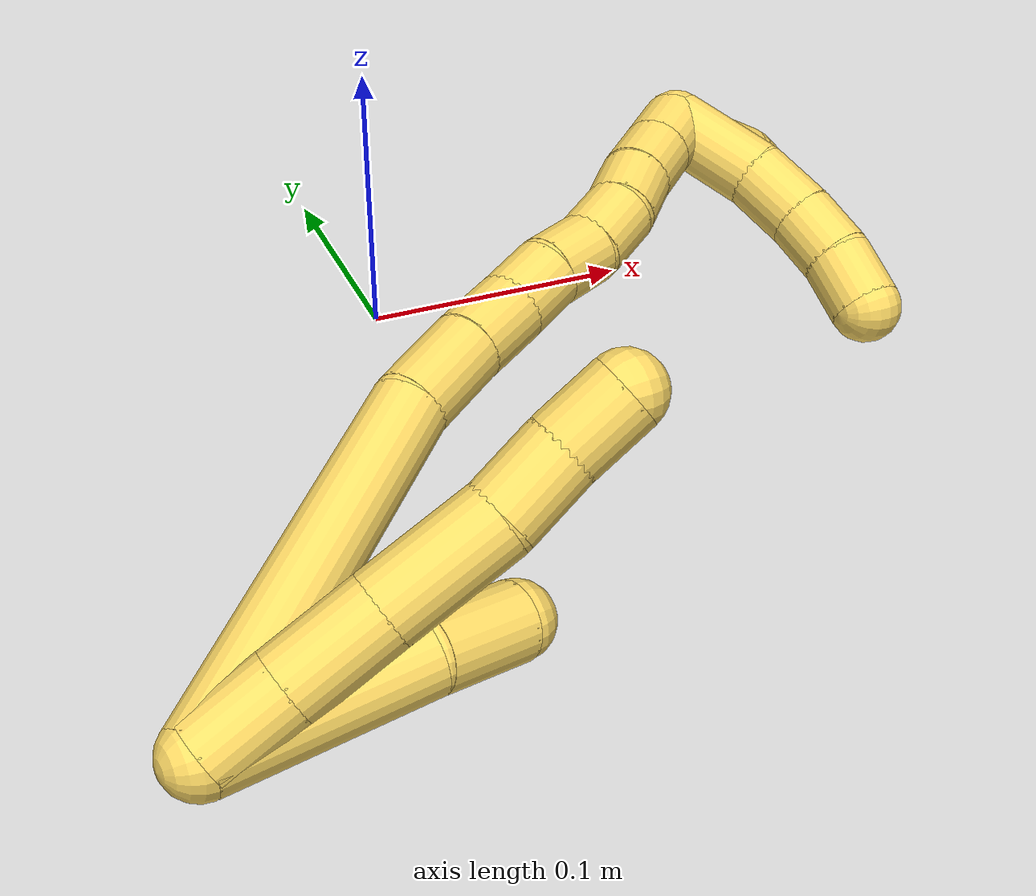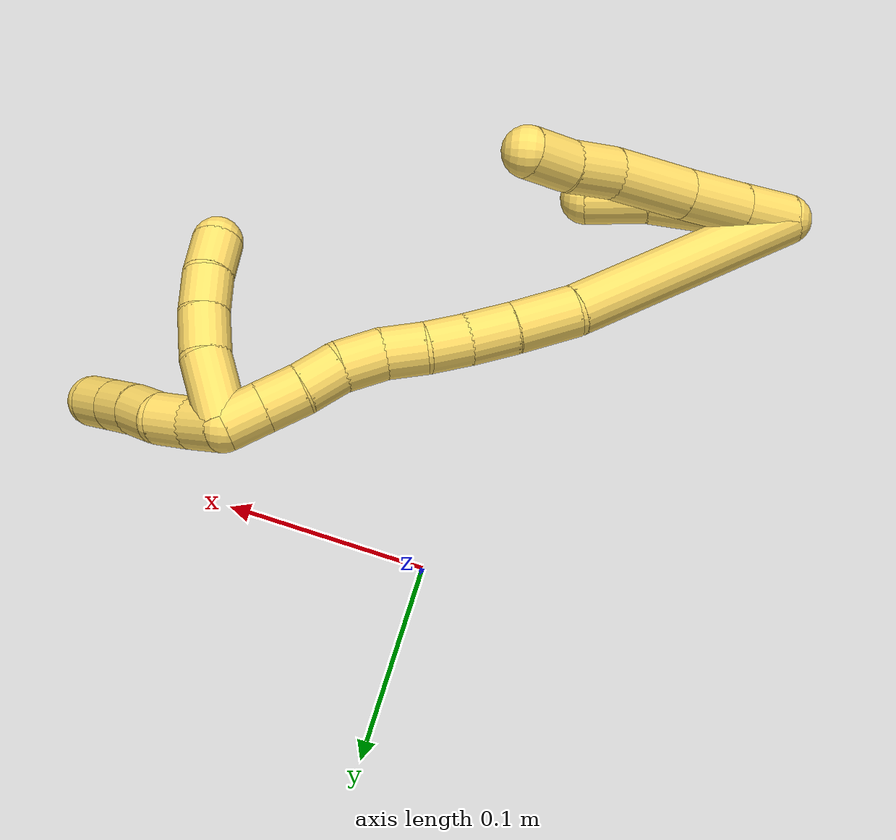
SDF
<sdf version="1.7">
 <world name="default">
  <model name="5">
   <static>0</static>
   <link name="5">
    <collision name="collision-cylinder-e_1_2_8">
     <pose>0.005964 -0.003396 -0.0121 2.86798 0.443072 2.04432</pose>
     <geometry><cylinder><radius>0.0125</radius><length>0.027822</length></cylinder></geometry>
     <surface>
      <friction><ode><mu>1.16</mu><mu2>1.16</mu2><slip1>0</slip1><slip2>0</slip2></ode></friction>
      <contact><ode><kp>1e+06</kp><kd>1</kd><max_vel>0</max_vel><min_depth>0.001</min_depth></ode></contact>
     </surface>
    </collision>
    <visual name="visual-cylinder-e_1_2_8">
     <pose>0.005964 -0.003396 -0.0121 2.86798 0.443072 2.04432</pose>
     <geometry><cylinder><radius>0.0125</radius><length>0.027822</length></cylinder></geometry>
     <material><ambient>1 0.858824 0.4 1</ambient></material>
    </visual>
    <collision name="collision-cylinder-e_2_8_9">
     <pose>0.018851 -0.010995 -0.038326 2.85237 0.43917 1.98532</pose>
     <geometry><cylinder><radius>0.0125</radius><length>0.032566</length></cylinder></geometry>
     <surface>
      <friction><ode><mu>1.16</mu><mu2>1.16</mu2><slip1>0</slip1><slip2>0</slip2></ode></friction>
      <contact><ode><kp>1e+06</kp><kd>1</kd><max_vel>0</max_vel><min_depth>0.001</min_depth></ode></contact>
     </surface>
    </collision>
    <visual name="visual-cylinder-e_2_8_9">
     <pose>0.018851 -0.010995 -0.038326 2.85237 0.43917 1.98532</pose>
     <geometry><cylinder><radius>0.0125</radius><length>0.032566</length></cylinder></geometry>
     <material><ambient>1 0.858824 0.4 1</ambient></material>
    </visual>
    <collision name="collision-cylinder-e_3_9_10">
     <pose>0.034395 -0.020926 -0.069828 2.82319 0.440298 1.89683</pose>
     <geometry><cylinder><radius>0.0125</radius><length>0.04045</length></cylinder></geometry>
     <surface>
      <friction><ode><mu>1.16</mu><mu2>1.16</mu2><slip1>0</slip1><slip2>0</slip2></ode></friction>
      <contact><ode><kp>1e+06</kp><kd>1</kd><max_vel>0</max_vel><min_depth>0.001</min_depth></ode></contact>
     </surface>
    </collision>
    <visual name="visual-cylinder-e_3_9_10">
     <pose>0.034395 -0.020926 -0.069828 2.82319 0.440298 1.89683</pose>
     <geometry><cylinder><radius>0.0125</radius><length>0.04045</length></cylinder></geometry>
     <material><ambient>1 0.858824 0.4 1</ambient></material>
    </visual>
    <collision name="collision-cylinder-e_4_10_11">
     <pose>0.049981 -0.029169 -0.097455 2.90095 0.583386 2.37597</pose>
     <geometry><cylinder><radius>0.0125</radius><length>0.025292</length></cylinder></geometry>
     <surface>
      <friction><ode><mu>1.16</mu><mu2>1.16</mu2><slip1>0</slip1><slip2>0</slip2></ode></friction>
      <contact><ode><kp>1e+06</kp><kd>1</kd><max_vel>0</max_vel><min_depth>0.001</min_depth></ode></contact>
     </surface>
    </collision>
    <visual name="visual-cylinder-e_4_10_11">
     <pose>0.049981 -0.029169 -0.097455 2.90095 0.583386 2.37597</pose>
     <geometry><cylinder><radius>0.0125</radius><length>0.025292</length></cylinder></geometry>
     <material><ambient>1 0.858824 0.4 1</ambient></material>
    </visual>
    <collision name="collision-cylinder-e_5_11_6">
     <pose>0.063087 -0.035705 -0.117117 2.73794 0.540404 1.8691</pose>
     <geometry><cylinder><radius>0.0125</radius><length>0.02387</length></cylinder></geometry>
     <surface>
      <friction><ode><mu>1.16</mu><mu2>1.16</mu2><slip1>0</slip1><slip2>0</slip2></ode></friction>
      <contact><ode><kp>1e+06</kp><kd>1</kd><max_vel>0</max_vel><min_depth>0.001</min_depth></ode></contact>
     </surface>
    </collision>
    <visual name="visual-cylinder-e_5_11_6">
     <pose>0.063087 -0.035705 -0.117117 2.73794 0.540404 1.8691</pose>
     <geometry><cylinder><radius>0.0125</radius><length>0.02387</length></cylinder></geometry>
     <material><ambient>1 0.858824 0.4 1</ambient></material>
    </visual>
    <collision name="collision-cylinder-e_1_2_12">
     <pose>0.002939 -0.003114 -0.03423 3.05086 0.085295 1.50896</pose>
     <geometry><cylinder><radius>0.0125</radius><length>0.068994</length></cylinder></geometry>
     <surface>
      <friction><ode><mu>1.16</mu><mu2>1.16</mu2><slip1>0</slip1><slip2>0</slip2></ode></friction>
      <contact><ode><kp>1e+06</kp><kd>1</kd><max_vel>0</max_vel><min_depth>0.001</min_depth></ode></contact>
     </surface>
    </collision>
    <visual name="visual-cylinder-e_1_2_12">
     <pose>0.002939 -0.003114 -0.03423 3.05086 0.085295 1.50896</pose>
     <geometry><cylinder><radius>0.0125</radius><length>0.068994</length></cylinder></geometry>
     <material><ambient>1 0.858824 0.4 1</ambient></material>
    </visual>
    <collision name="collision-cylinder-e_2_12_5">
     <pose>0.005324 -0.004568 -0.083864 -3.03422 -0.0357 0.641452</pose>
     <geometry><cylinder><radius>0.0125</radius><length>0.031006</length></cylinder></geometry>
     <surface>
      <friction><ode><mu>1.16</mu><mu2>1.16</mu2><slip1>0</slip1><slip2>0</slip2></ode></friction>
      <contact><ode><kp>1e+06</kp><kd>1</kd><max_vel>0</max_vel><min_depth>0.001</min_depth></ode></contact>
     </surface>
    </collision>
    <visual name="visual-cylinder-e_2_12_5">
     <pose>0.005324 -0.004568 -0.083864 -3.03422 -0.0357 0.641452</pose>
     <geometry><cylinder><radius>0.0125</radius><length>0.031006</length></cylinder></geometry>
     <material><ambient>1 0.858824 0.4 1</ambient></material>
    </visual>
    <collision name="collision-cylinder-e_1_2_13">
     <pose>0.033339 0.017505 -0.049345 -2.80069 0.567011 -2.0744</pose>
     <geometry><cylinder><radius>0.0125</radius><length>0.124143</length></cylinder></geometry>
     <surface>
      <friction><ode><mu>1.16</mu><mu2>1.16</mu2><slip1>0</slip1><slip2>0</slip2></ode></friction>
      <contact><ode><kp>1e+06</kp><kd>1</kd><max_vel>0</max_vel><min_depth>0.001</min_depth></ode></contact>
     </surface>
    </collision>
    <visual name="visual-cylinder-e_1_2_13">
     <pose>0.033339 0.017505 -0.049345 -2.80069 0.567011 -2.0744</pose>
     <geometry><cylinder><radius>0.0125</radius><length>0.124143</length></cylinder></geometry>
     <material><ambient>1 0.858824 0.4 1</ambient></material>
    </visual>
    <collision name="collision-cylinder-e_2_13_14">
     <pose>0.07237 0.038706 -0.112405 -2.87836 0.381112 -1.93867</pose>
     <geometry><cylinder><radius>0.0125</radius><length>0.030604</length></cylinder></geometry>
     <surface>
      <friction><ode><mu>1.16</mu><mu2>1.16</mu2><slip1>0</slip1><slip2>0</slip2></ode></friction>
      <contact><ode><kp>1e+06</kp><kd>1</kd><max_vel>0</max_vel><min_depth>0.001</min_depth></ode></contact>
     </surface>
    </collision>
    <visual name="visual-cylinder-e_2_13_14">
     <pose>0.07237 0.038706 -0.112405 -2.87836 0.381112 -1.93867</pose>
     <geometry><cylinder><radius>0.0125</radius><length>0.030604</length></cylinder></geometry>
     <material><ambient>1 0.858824 0.4 1</ambient></material>
    </visual>
    <collision name="collision-cylinder-e_3_14_15">
     <pose>0.08176 0.045058 -0.136732 -2.89636 0.32597 -1.85535</pose>
     <geometry><cylinder><radius>0.0125</radius><length>0.023096</length></cylinder></geometry>
     <surface>
      <friction><ode><mu>1.16</mu><mu2>1.16</mu2><slip1>0</slip1><slip2>0</slip2></ode></friction>
      <contact><ode><kp>1e+06</kp><kd>1</kd><max_vel>0</max_vel><min_depth>0.001</min_depth></ode></contact>
     </surface>
    </collision>
    <visual name="visual-cylinder-e_3_14_15">
     <pose>0.08176 0.045058 -0.136732 -2.89636 0.32597 -1.85535</pose>
     <geometry><cylinder><radius>0.0125</radius><length>0.023096</length></cylinder></geometry>
     <material><ambient>1 0.858824 0.4 1</ambient></material>
    </visual>
    <collision name="collision-cylinder-e_4_15_16">
     <pose>0.089203 0.049381 -0.156506 -2.96162 0.382405 -2.26919</pose>
     <geometry><cylinder><radius>0.0125</radius><length>0.020072</length></cylinder></geometry>
     <surface>
      <friction><ode><mu>1.16</mu><mu2>1.16</mu2><slip1>0</slip1><slip2>0</slip2></ode></friction>
      <contact><ode><kp>1e+06</kp><kd>1</kd><max_vel>0</max_vel><min_depth>0.001</min_depth></ode></contact>
     </surface>
    </collision>
    <visual name="visual-cylinder-e_4_15_16">
     <pose>0.089203 0.049381 -0.156506 -2.96162 0.382405 -2.26919</pose>
     <geometry><cylinder><radius>0.0125</radius><length>0.020072</length></cylinder></geometry>
     <material><ambient>1 0.858824 0.4 1</ambient></material>
    </visual>
    <collision name="collision-cylinder-e_5_16_17">
     <pose>0.094967 0.052707 -0.175449 -2.9736 0.200763 -1.74904</pose>
     <geometry><cylinder><radius>0.0125</radius><length>0.020251</length></cylinder></geometry>
     <surface>
      <friction><ode><mu>1.16</mu><mu2>1.16</mu2><slip1>0</slip1><slip2>0</slip2></ode></friction>
      <contact><ode><kp>1e+06</kp><kd>1</kd><max_vel>0</max_vel><min_depth>0.001</min_depth></ode></contact>
     </surface>
    </collision>
    <visual name="visual-cylinder-e_5_16_17">
     <pose>0.094967 0.052707 -0.175449 -2.9736 0.200763 -1.74904</pose>
     <geometry><cylinder><radius>0.0125</radius><length>0.020251</length></cylinder></geometry>
     <material><ambient>1 0.858824 0.4 1</ambient></material>
    </visual>
    <collision name="collision-cylinder-e_6_17_18">
     <pose>0.101208 0.057142 -0.194801 -2.85924 0.400754 -1.92046</pose>
     <geometry><cylinder><radius>0.0125</radius><length>0.021644</length></cylinder></geometry>
     <surface>
      <friction><ode><mu>1.16</mu><mu2>1.16</mu2><slip1>0</slip1><slip2>0</slip2></ode></friction>
      <contact><ode><kp>1e+06</kp><kd>1</kd><max_vel>0</max_vel><min_depth>0.001</min_depth></ode></contact>
     </surface>
    </collision>
    <visual name="visual-cylinder-e_6_17_18">
     <pose>0.101208 0.057142 -0.194801 -2.85924 0.400754 -1.92046</pose>
     <geometry><cylinder><radius>0.0125</radius><length>0.021644</length></cylinder></geometry>
     <material><ambient>1 0.858824 0.4 1</ambient></material>
    </visual>
    <collision name="collision-cylinder-e_7_18_19">
     <pose>0.109869 0.064449 -0.21218 -2.61583 0.457039 -1.42543</pose>
     <geometry><cylinder><radius>0.0125</radius><length>0.020119</length></cylinder></geometry>
     <surface>
      <friction><ode><mu>1.16</mu><mu2>1.16</mu2><slip1>0</slip1><slip2>0</slip2></ode></friction>
      <contact><ode><kp>1e+06</kp><kd>1</kd><max_vel>0</max_vel><min_depth>0.001</min_depth></ode></contact>
     </surface>
    </collision>
    <visual name="visual-cylinder-e_7_18_19">
     <pose>0.109869 0.064449 -0.21218 -2.61583 0.457039 -1.42543</pose>
     <geometry><cylinder><radius>0.0125</radius><length>0.020119</length></cylinder></geometry>
     <material><ambient>1 0.858824 0.4 1</ambient></material>
    </visual>
    <collision name="collision-cylinder-e_8_19_20">
     <pose>0.11786 0.073043 -0.22843 -2.69301 0.362258 -1.35287</pose>
     <geometry><cylinder><radius>0.0125</radius><length>0.02004</length></cylinder></geometry>
     <surface>
      <friction><ode><mu>1.16</mu><mu2>1.16</mu2><slip1>0</slip1><slip2>0</slip2></ode></friction>
      <contact><ode><kp>1e+06</kp><kd>1</kd><max_vel>0</max_vel><min_depth>0.001</min_depth></ode></contact>
     </surface>
    </collision>
    <visual name="visual-cylinder-e_8_19_20">
     <pose>0.11786 0.073043 -0.22843 -2.69301 0.362258 -1.35287</pose>
     <geometry><cylinder><radius>0.0125</radius><length>0.02004</length></cylinder></geometry>
     <material><ambient>1 0.858824 0.4 1</ambient></material>
    </visual>
    <collision name="collision-cylinder-e_9_20_1">
     <pose>0.125015 0.081174 -0.245285 -2.69116 0.368156 -1.36483</pose>
     <geometry><cylinder><radius>0.0125</radius><length>0.02003</length></cylinder></geometry>
     <surface>
      <friction><ode><mu>1.16</mu><mu2>1.16</mu2><slip1>0</slip1><slip2>0</slip2></ode></friction>
      <contact><ode><kp>1e+06</kp><kd>1</kd><max_vel>0</max_vel><min_depth>0.001</min_depth></ode></contact>
     </surface>
    </collision>
    <visual name="visual-cylinder-e_9_20_1">
     <pose>0.125015 0.081174 -0.245285 -2.69116 0.368156 -1.36483</pose>
     <geometry><cylinder><radius>0.0125</radius><length>0.02003</length></cylinder></geometry>
     <material><ambient>1 0.858824 0.4 1</ambient></material>
    </visual>
    <collision name="collision-cylinder-e_1_1_21">
     <pose>0.117475 0.073084 -0.260355 2.07183 -0.67713 -1.07245</pose>
     <geometry><cylinder><radius>0.0125</radius><length>0.035572</length></cylinder></geometry>
     <surface>
      <friction><ode><mu>1.16</mu><mu2>1.16</mu2><slip1>0</slip1><slip2>0</slip2></ode></friction>
      <contact><ode><kp>1e+06</kp><kd>1</kd><max_vel>0</max_vel><min_depth>0.001</min_depth></ode></contact>
     </surface>
    </collision>
    <visual name="visual-cylinder-e_1_1_21">
     <pose>0.117475 0.073084 -0.260355 2.07183 -0.67713 -1.07245</pose>
     <geometry><cylinder><radius>0.0125</radius><length>0.035572</length></cylinder></geometry>
     <material><ambient>1 0.858824 0.4 1</ambient></material>
    </visual>
    <collision name="collision-cylinder-e_2_21_22">
     <pose>0.098047 0.053009 -0.269291 1.85093 -0.788179 -1.00929</pose>
     <geometry><cylinder><radius>0.0125</radius><length>0.023367</length></cylinder></geometry>
     <surface>
      <friction><ode><mu>1.16</mu><mu2>1.16</mu2><slip1>0</slip1><slip2>0</slip2></ode></friction>
      <contact><ode><kp>1e+06</kp><kd>1</kd><max_vel>0</max_vel><min_depth>0.001</min_depth></ode></contact>
     </surface>
    </collision>
    <visual name="visual-cylinder-e_2_21_22">
     <pose>0.098047 0.053009 -0.269291 1.85093 -0.788179 -1.00929</pose>
     <geometry><cylinder><radius>0.0125</radius><length>0.023367</length></cylinder></geometry>
     <material><ambient>1 0.858824 0.4 1</ambient></material>
    </visual>
    <collision name="collision-cylinder-e_3_22_23">
     <pose>0.08227 0.038233 -0.272227 1.66638 -0.827247 -0.899984</pose>
     <geometry><cylinder><radius>0.0125</radius><length>0.020358</length></cylinder></geometry>
     <surface>
      <friction><ode><mu>1.16</mu><mu2>1.16</mu2><slip1>0</slip1><slip2>0</slip2></ode></friction>
      <contact><ode><kp>1e+06</kp><kd>1</kd><max_vel>0</max_vel><min_depth>0.001</min_depth></ode></contact>
     </surface>
    </collision>
    <visual name="visual-cylinder-e_3_22_23">
     <pose>0.08227 0.038233 -0.272227 1.66638 -0.827247 -0.899984</pose>
     <geometry><cylinder><radius>0.0125</radius><length>0.020358</length></cylinder></geometry>
     <material><ambient>1 0.858824 0.4 1</ambient></material>
    </visual>
    <collision name="collision-cylinder-e_4_23_4">
     <pose>0.066227 0.025552 -0.272518 1.508 -0.972036 -0.921061</pose>
     <geometry><cylinder><radius>0.0125</radius><length>0.020704</length></cylinder></geometry>
     <surface>
      <friction><ode><mu>1.16</mu><mu2>1.16</mu2><slip1>0</slip1><slip2>0</slip2></ode></friction>
      <contact><ode><kp>1e+06</kp><kd>1</kd><max_vel>0</max_vel><min_depth>0.001</min_depth></ode></contact>
     </surface>
    </collision>
    <visual name="visual-cylinder-e_4_23_4">
     <pose>0.066227 0.025552 -0.272518 1.508 -0.972036 -0.921061</pose>
     <geometry><cylinder><radius>0.0125</radius><length>0.020704</length></cylinder></geometry>
     <material><ambient>1 0.858824 0.4 1</ambient></material>
    </visual>
    <collision name="collision-cylinder-e_1_1_24">
     <pose>0.123341 0.087363 -0.261922 -2.88928 -0.556002 2.30521</pose>
     <geometry><cylinder><radius>0.0125</radius><length>0.02</length></cylinder></geometry>
     <surface>
      <friction><ode><mu>1.16</mu><mu2>1.16</mu2><slip1>0</slip1><slip2>0</slip2></ode></friction>
      <contact><ode><kp>1e+06</kp><kd>1</kd><max_vel>0</max_vel><min_depth>0.001</min_depth></ode></contact>
     </surface>
    </collision>
    <visual name="visual-cylinder-e_1_1_24">
     <pose>0.123341 0.087363 -0.261922 -2.88928 -0.556002 2.30521</pose>
     <geometry><cylinder><radius>0.0125</radius><length>0.02</length></cylinder></geometry>
     <material><ambient>1 0.858824 0.4 1</ambient></material>
    </visual>
    <collision name="collision-cylinder-e_2_24_25">
     <pose>0.11383 0.090822 -0.279107 -2.99326 -0.437133 2.49594</pose>
     <geometry><cylinder><radius>0.0125</radius><length>0.02</length></cylinder></geometry>
     <surface>
      <friction><ode><mu>1.16</mu><mu2>1.16</mu2><slip1>0</slip1><slip2>0</slip2></ode></friction>
      <contact><ode><kp>1e+06</kp><kd>1</kd><max_vel>0</max_vel><min_depth>0.001</min_depth></ode></contact>
     </surface>
    </collision>
    <visual name="visual-cylinder-e_2_24_25">
     <pose>0.11383 0.090822 -0.279107 -2.99326 -0.437133 2.49594</pose>
     <geometry><cylinder><radius>0.0125</radius><length>0.02</length></cylinder></geometry>
     <material><ambient>1 0.858824 0.4 1</ambient></material>
    </visual>
    <collision name="collision-cylinder-e_3_25_26">
     <pose>0.102531 0.093386 -0.295037 -2.96771 -0.784566 2.72632</pose>
     <geometry><cylinder><radius>0.0125</radius><length>0.02</length></cylinder></geometry>
     <surface>
      <friction><ode><mu>1.16</mu><mu2>1.16</mu2><slip1>0</slip1><slip2>0</slip2></ode></friction>
      <contact><ode><kp>1e+06</kp><kd>1</kd><max_vel>0</max_vel><min_depth>0.001</min_depth></ode></contact>
     </surface>
    </collision>
    <visual name="visual-cylinder-e_3_25_26">
     <pose>0.102531 0.093386 -0.295037 -2.96771 -0.784566 2.72632</pose>
     <geometry><cylinder><radius>0.0125</radius><length>0.02</length></cylinder></geometry>
     <material><ambient>1 0.858824 0.4 1</ambient></material>
    </visual>
    <collision name="collision-cylinder-e_4_26_27">
     <pose>0.088605 0.096712 -0.308972 -2.84854 -0.75607 2.42998</pose>
     <geometry><cylinder><radius>0.0125</radius><length>0.02</length></cylinder></geometry>
     <surface>
      <friction><ode><mu>1.16</mu><mu2>1.16</mu2><slip1>0</slip1><slip2>0</slip2></ode></friction>
      <contact><ode><kp>1e+06</kp><kd>1</kd><max_vel>0</max_vel><min_depth>0.001</min_depth></ode></contact>
     </surface>
    </collision>
    <visual name="visual-cylinder-e_4_26_27">
     <pose>0.088605 0.096712 -0.308972 -2.84854 -0.75607 2.42998</pose>
     <geometry><cylinder><radius>0.0125</radius><length>0.02</length></cylinder></geometry>
     <material><ambient>1 0.858824 0.4 1</ambient></material>
    </visual>
    <collision name="collision-cylinder-e_5_27_3">
     <pose>0.07512 0.100852 -0.323146 -2.86599 -0.724157 2.43967</pose>
     <geometry><cylinder><radius>0.0125</radius><length>0.02</length></cylinder></geometry>
     <surface>
      <friction><ode><mu>1.16</mu><mu2>1.16</mu2><slip1>0</slip1><slip2>0</slip2></ode></friction>
      <contact><ode><kp>1e+06</kp><kd>1</kd><max_vel>0</max_vel><min_depth>0.001</min_depth></ode></contact>
     </surface>
    </collision>
    <visual name="visual-cylinder-e_5_27_3">
     <pose>0.07512 0.100852 -0.323146 -2.86599 -0.724157 2.43967</pose>
     <geometry><cylinder><radius>0.0125</radius><length>0.02</length></cylinder></geometry>
     <material><ambient>1 0.858824 0.4 1</ambient></material>
    </visual>
    <collision name="collision-sphere-3">
     <pose>0.068495 0.10289 -0.330353 0 -0 0</pose>
     <geometry><sphere><radius>0.0125</radius></sphere></geometry>
     <surface>
      <friction><ode><mu>1.16</mu><mu2>1.16</mu2><slip1>0</slip1><slip2>0</slip2></ode></friction>
      <contact><ode><kp>1e+06</kp><kd>1</kd><max_vel>0</max_vel><min_depth>0.001</min_depth></ode></contact>
     </surface>
    </collision>
    <visual name="visual-sphere-3">
     <pose>0.068495 0.10289 -0.330353 0 -0 0</pose>
     <geometry><sphere><radius>0.0125</radius></sphere></geometry>
     <material><ambient>1 0.858824 0.4 1</ambient></material>
    </visual>
    <collision name="collision-sphere-27">
     <pose>0.081745 0.098813 -0.315938 0 -0 0</pose>
     <geometry><sphere><radius>0.0125</radius></sphere></geometry>
     <surface>
      <friction><ode><mu>1.16</mu><mu2>1.16</mu2><slip1>0</slip1><slip2>0</slip2></ode></friction>
      <contact><ode><kp>1e+06</kp><kd>1</kd><max_vel>0</max_vel><min_depth>0.001</min_depth></ode></contact>
     </surface>
    </collision>
    <visual name="visual-sphere-27">
     <pose>0.081745 0.098813 -0.315938 0 -0 0</pose>
     <geometry><sphere><radius>0.0125</radius></sphere></geometry>
     <material><ambient>1 0.858824 0.4 1</ambient></material>
    </visual>
    <collision name="collision-sphere-26">
     <pose>0.095466 0.09461 -0.302007 0 -0 0</pose>
     <geometry><sphere><radius>0.0125</radius></sphere></geometry>
     <surface>
      <friction><ode><mu>1.16</mu><mu2>1.16</mu2><slip1>0</slip1><slip2>0</slip2></ode></friction>
      <contact><ode><kp>1e+06</kp><kd>1</kd><max_vel>0</max_vel><min_depth>0.001</min_depth></ode></contact>
     </surface>
    </collision>
    <visual name="visual-sphere-26">
     <pose>0.095466 0.09461 -0.302007 0 -0 0</pose>
     <geometry><sphere><radius>0.0125</radius></sphere></geometry>
     <material><ambient>1 0.858824 0.4 1</ambient></material>
    </visual>
    <collision name="collision-sphere-25">
     <pose>0.109597 0.092161 -0.288067 0 -0 0</pose>
     <geometry><sphere><radius>0.0125</radius></sphere></geometry>
     <surface>
      <friction><ode><mu>1.16</mu><mu2>1.16</mu2><slip1>0</slip1><slip2>0</slip2></ode></friction>
      <contact><ode><kp>1e+06</kp><kd>1</kd><max_vel>0</max_vel><min_depth>0.001</min_depth></ode></contact>
     </surface>
    </collision>
    <visual name="visual-sphere-25">
     <pose>0.109597 0.092161 -0.288067 0 -0 0</pose>
     <geometry><sphere><radius>0.0125</radius></sphere></geometry>
     <material><ambient>1 0.858824 0.4 1</ambient></material>
    </visual>
    <collision name="collision-sphere-24">
     <pose>0.118063 0.089483 -0.270146 0 -0 0</pose>
     <geometry><sphere><radius>0.0125</radius></sphere></geometry>
     <surface>
      <friction><ode><mu>1.16</mu><mu2>1.16</mu2><slip1>0</slip1><slip2>0</slip2></ode></friction>
      <contact><ode><kp>1e+06</kp><kd>1</kd><max_vel>0</max_vel><min_depth>0.001</min_depth></ode></contact>
     </surface>
    </collision>
    <visual name="visual-sphere-24">
     <pose>0.118063 0.089483 -0.270146 0 -0 0</pose>
     <geometry><sphere><radius>0.0125</radius></sphere></geometry>
     <material><ambient>1 0.858824 0.4 1</ambient></material>
    </visual>
    <collision name="collision-sphere-4">
     <pose>0.057676 0.019729 -0.272152 0 -0 0</pose>
     <geometry><sphere><radius>0.0125</radius></sphere></geometry>
     <surface>
      <friction><ode><mu>1.16</mu><mu2>1.16</mu2><slip1>0</slip1><slip2>0</slip2></ode></friction>
      <contact><ode><kp>1e+06</kp><kd>1</kd><max_vel>0</max_vel><min_depth>0.001</min_depth></ode></contact>
     </surface>
    </collision>
    <visual name="visual-sphere-4">
     <pose>0.057676 0.019729 -0.272152 0 -0 0</pose>
     <geometry><sphere><radius>0.0125</radius></sphere></geometry>
     <material><ambient>1 0.858824 0.4 1</ambient></material>
    </visual>
    <collision name="collision-sphere-23">
     <pose>0.074778 0.031375 -0.272884 0 -0 0</pose>
     <geometry><sphere><radius>0.0125</radius></sphere></geometry>
     <surface>
      <friction><ode><mu>1.16</mu><mu2>1.16</mu2><slip1>0</slip1><slip2>0</slip2></ode></friction>
      <contact><ode><kp>1e+06</kp><kd>1</kd><max_vel>0</max_vel><min_depth>0.001</min_depth></ode></contact>
     </surface>
    </collision>
    <visual name="visual-sphere-23">
     <pose>0.074778 0.031375 -0.272884 0 -0 0</pose>
     <geometry><sphere><radius>0.0125</radius></sphere></geometry>
     <material><ambient>1 0.858824 0.4 1</ambient></material>
    </visual>
    <collision name="collision-sphere-22">
     <pose>0.089763 0.045092 -0.271569 0 -0 0</pose>
     <geometry><sphere><radius>0.0125</radius></sphere></geometry>
     <surface>
      <friction><ode><mu>1.16</mu><mu2>1.16</mu2><slip1>0</slip1><slip2>0</slip2></ode></friction>
      <contact><ode><kp>1e+06</kp><kd>1</kd><max_vel>0</max_vel><min_depth>0.001</min_depth></ode></contact>
     </surface>
    </collision>
    <visual name="visual-sphere-22">
     <pose>0.089763 0.045092 -0.271569 0 -0 0</pose>
     <geometry><sphere><radius>0.0125</radius></sphere></geometry>
     <material><ambient>1 0.858824 0.4 1</ambient></material>
    </visual>
    <collision name="collision-sphere-21">
     <pose>0.106331 0.060926 -0.267013 0 -0 0</pose>
     <geometry><sphere><radius>0.0125</radius></sphere></geometry>
     <surface>
      <friction><ode><mu>1.16</mu><mu2>1.16</mu2><slip1>0</slip1><slip2>0</slip2></ode></friction>
      <contact><ode><kp>1e+06</kp><kd>1</kd><max_vel>0</max_vel><min_depth>0.001</min_depth></ode></contact>
     </surface>
    </collision>
    <visual name="visual-sphere-21">
     <pose>0.106331 0.060926 -0.267013 0 -0 0</pose>
     <geometry><sphere><radius>0.0125</radius></sphere></geometry>
     <material><ambient>1 0.858824 0.4 1</ambient></material>
    </visual>
    <collision name="collision-sphere-1">
     <pose>0.128619 0.085242 -0.253697 0 -0 0</pose>
     <geometry><sphere><radius>0.0125</radius></sphere></geometry>
     <surface>
      <friction><ode><mu>1.16</mu><mu2>1.16</mu2><slip1>0</slip1><slip2>0</slip2></ode></friction>
      <contact><ode><kp>1e+06</kp><kd>1</kd><max_vel>0</max_vel><min_depth>0.001</min_depth></ode></contact>
     </surface>
    </collision>
    <visual name="visual-sphere-1">
     <pose>0.128619 0.085242 -0.253697 0 -0 0</pose>
     <geometry><sphere><radius>0.0125</radius></sphere></geometry>
     <material><ambient>1 0.858824 0.4 1</ambient></material>
    </visual>
    <collision name="collision-sphere-6">
     <pose>0.069227 -0.039724 -0.126529 0 -0 0</pose>
     <geometry><sphere><radius>0.0125</radius></sphere></geometry>
     <surface>
      <friction><ode><mu>1.16</mu><mu2>1.16</mu2><slip1>0</slip1><slip2>0</slip2></ode></friction>
      <contact><ode><kp>1e+06</kp><kd>1</kd><max_vel>0</max_vel><min_depth>0.001</min_depth></ode></contact>
     </surface>
    </collision>
    <visual name="visual-sphere-6">
     <pose>0.069227 -0.039724 -0.126529 0 -0 0</pose>
     <geometry><sphere><radius>0.0125</radius></sphere></geometry>
     <material><ambient>1 0.858824 0.4 1</ambient></material>
    </visual>
    <collision name="collision-sphere-11">
     <pose>0.056947 -0.031685 -0.107705 0 -0 0</pose>
     <geometry><sphere><radius>0.0125</radius></sphere></geometry>
     <surface>
      <friction><ode><mu>1.16</mu><mu2>1.16</mu2><slip1>0</slip1><slip2>0</slip2></ode></friction>
      <contact><ode><kp>1e+06</kp><kd>1</kd><max_vel>0</max_vel><min_depth>0.001</min_depth></ode></contact>
     </surface>
    </collision>
    <visual name="visual-sphere-11">
     <pose>0.056947 -0.031685 -0.107705 0 -0 0</pose>
     <geometry><sphere><radius>0.0125</radius></sphere></geometry>
     <material><ambient>1 0.858824 0.4 1</ambient></material>
    </visual>
    <collision name="collision-sphere-10">
     <pose>0.043015 -0.026654 -0.087205 0 -0 0</pose>
     <geometry><sphere><radius>0.0125</radius></sphere></geometry>
     <surface>
      <friction><ode><mu>1.16</mu><mu2>1.16</mu2><slip1>0</slip1><slip2>0</slip2></ode></friction>
      <contact><ode><kp>1e+06</kp><kd>1</kd><max_vel>0</max_vel><min_depth>0.001</min_depth></ode></contact>
     </surface>
    </collision>
    <visual name="visual-sphere-10">
     <pose>0.043015 -0.026654 -0.087205 0 -0 0</pose>
     <geometry><sphere><radius>0.0125</radius></sphere></geometry>
     <material><ambient>1 0.858824 0.4 1</ambient></material>
    </visual>
    <collision name="collision-sphere-9">
     <pose>0.025774 -0.015199 -0.052452 0 -0 0</pose>
     <geometry><sphere><radius>0.0125</radius></sphere></geometry>
     <surface>
      <friction><ode><mu>1.16</mu><mu2>1.16</mu2><slip1>0</slip1><slip2>0</slip2></ode></friction>
      <contact><ode><kp>1e+06</kp><kd>1</kd><max_vel>0</max_vel><min_depth>0.001</min_depth></ode></contact>
     </surface>
    </collision>
    <visual name="visual-sphere-9">
     <pose>0.025774 -0.015199 -0.052452 0 -0 0</pose>
     <geometry><sphere><radius>0.0125</radius></sphere></geometry>
     <material><ambient>1 0.858824 0.4 1</ambient></material>
    </visual>
    <collision name="collision-sphere-2">
     <geometry><sphere><radius>0.0125</radius></sphere></geometry>
     <surface>
      <friction><ode><mu>1.16</mu><mu2>1.16</mu2><slip1>0</slip1><slip2>0</slip2></ode></friction>
      <contact><ode><kp>1e+06</kp><kd>1</kd><max_vel>0</max_vel><min_depth>0.001</min_depth></ode></contact>
     </surface>
    </collision>
    <visual name="visual-sphere-2">
     <geometry><sphere><radius>0.0125</radius></sphere></geometry>
     <material><ambient>1 0.858824 0.4 1</ambient></material>
    </visual>
    <collision name="collision-sphere-19">
     <pose>0.114309 0.06898 -0.219987 0 -0 0</pose>
     <geometry><sphere><radius>0.0125</radius></sphere></geometry>
     <surface>
      <friction><ode><mu>1.16</mu><mu2>1.16</mu2><slip1>0</slip1><slip2>0</slip2></ode></friction>
      <contact><ode><kp>1e+06</kp><kd>1</kd><max_vel>0</max_vel><min_depth>0.001</min_depth></ode></contact>
     </surface>
    </collision>
    <visual name="visual-sphere-19">
     <pose>0.114309 0.06898 -0.219987 0 -0 0</pose>
     <geometry><sphere><radius>0.0125</radius></sphere></geometry>
     <material><ambient>1 0.858824 0.4 1</ambient></material>
    </visual>
    <collision name="collision-sphere-8">
     <pose>0.011928 -0.006792 -0.024201 0 -0 0</pose>
     <geometry><sphere><radius>0.0125</radius></sphere></geometry>
     <surface>
      <friction><ode><mu>1.16</mu><mu2>1.16</mu2><slip1>0</slip1><slip2>0</slip2></ode></friction>
      <contact><ode><kp>1e+06</kp><kd>1</kd><max_vel>0</max_vel><min_depth>0.001</min_depth></ode></contact>
     </surface>
    </collision>
    <visual name="visual-sphere-8">
     <pose>0.011928 -0.006792 -0.024201 0 -0 0</pose>
     <geometry><sphere><radius>0.0125</radius></sphere></geometry>
     <material><ambient>1 0.858824 0.4 1</ambient></material>
    </visual>
    <collision name="collision-sphere-12">
     <pose>0.005878 -0.006229 -0.06846 0 -0 0</pose>
     <geometry><sphere><radius>0.0125</radius></sphere></geometry>
     <surface>
      <friction><ode><mu>1.16</mu><mu2>1.16</mu2><slip1>0</slip1><slip2>0</slip2></ode></friction>
      <contact><ode><kp>1e+06</kp><kd>1</kd><max_vel>0</max_vel><min_depth>0.001</min_depth></ode></contact>
     </surface>
    </collision>
    <visual name="visual-sphere-12">
     <pose>0.005878 -0.006229 -0.06846 0 -0 0</pose>
     <geometry><sphere><radius>0.0125</radius></sphere></geometry>
     <material><ambient>1 0.858824 0.4 1</ambient></material>
    </visual>
    <collision name="collision-sphere-5">
     <pose>0.004771 -0.002908 -0.099268 0 -0 0</pose>
     <geometry><sphere><radius>0.0125</radius></sphere></geometry>
     <surface>
      <friction><ode><mu>1.16</mu><mu2>1.16</mu2><slip1>0</slip1><slip2>0</slip2></ode></friction>
      <contact><ode><kp>1e+06</kp><kd>1</kd><max_vel>0</max_vel><min_depth>0.001</min_depth></ode></contact>
     </surface>
    </collision>
    <visual name="visual-sphere-5">
     <pose>0.004771 -0.002908 -0.099268 0 -0 0</pose>
     <geometry><sphere><radius>0.0125</radius></sphere></geometry>
     <material><ambient>1 0.858824 0.4 1</ambient></material>
    </visual>
    <collision name="collision-sphere-13">
     <pose>0.066679 0.03501 -0.09869 0 -0 0</pose>
     <geometry><sphere><radius>0.0125</radius></sphere></geometry>
     <surface>
      <friction><ode><mu>1.16</mu><mu2>1.16</mu2><slip1>0</slip1><slip2>0</slip2></ode></friction>
      <contact><ode><kp>1e+06</kp><kd>1</kd><max_vel>0</max_vel><min_depth>0.001</min_depth></ode></contact>
     </surface>
    </collision>
    <visual name="visual-sphere-13">
     <pose>0.066679 0.03501 -0.09869 0 -0 0</pose>
     <geometry><sphere><radius>0.0125</radius></sphere></geometry>
     <material><ambient>1 0.858824 0.4 1</ambient></material>
    </visual>
    <collision name="collision-sphere-14">
     <pose>0.078062 0.042402 -0.126119 0 -0 0</pose>
     <geometry><sphere><radius>0.0125</radius></sphere></geometry>
     <surface>
      <friction><ode><mu>1.16</mu><mu2>1.16</mu2><slip1>0</slip1><slip2>0</slip2></ode></friction>
      <contact><ode><kp>1e+06</kp><kd>1</kd><max_vel>0</max_vel><min_depth>0.001</min_depth></ode></contact>
     </surface>
    </collision>
    <visual name="visual-sphere-14">
     <pose>0.078062 0.042402 -0.126119 0 -0 0</pose>
     <geometry><sphere><radius>0.0125</radius></sphere></geometry>
     <material><ambient>1 0.858824 0.4 1</ambient></material>
    </visual>
    <collision name="collision-sphere-15">
     <pose>0.085458 0.047714 -0.147345 0 -0 0</pose>
     <geometry><sphere><radius>0.0125</radius></sphere></geometry>
     <surface>
      <friction><ode><mu>1.16</mu><mu2>1.16</mu2><slip1>0</slip1><slip2>0</slip2></ode></friction>
      <contact><ode><kp>1e+06</kp><kd>1</kd><max_vel>0</max_vel><min_depth>0.001</min_depth></ode></contact>
     </surface>
    </collision>
    <visual name="visual-sphere-15">
     <pose>0.085458 0.047714 -0.147345 0 -0 0</pose>
     <geometry><sphere><radius>0.0125</radius></sphere></geometry>
     <material><ambient>1 0.858824 0.4 1</ambient></material>
    </visual>
    <collision name="collision-sphere-16">
     <pose>0.092948 0.051048 -0.165666 0 -0 0</pose>
     <geometry><sphere><radius>0.0125</radius></sphere></geometry>
     <surface>
      <friction><ode><mu>1.16</mu><mu2>1.16</mu2><slip1>0</slip1><slip2>0</slip2></ode></friction>
      <contact><ode><kp>1e+06</kp><kd>1</kd><max_vel>0</max_vel><min_depth>0.001</min_depth></ode></contact>
     </surface>
    </collision>
    <visual name="visual-sphere-16">
     <pose>0.092948 0.051048 -0.165666 0 -0 0</pose>
     <geometry><sphere><radius>0.0125</radius></sphere></geometry>
     <material><ambient>1 0.858824 0.4 1</ambient></material>
    </visual>
    <collision name="collision-sphere-17">
     <pose>0.096986 0.054366 -0.185231 0 -0 0</pose>
     <geometry><sphere><radius>0.0125</radius></sphere></geometry>
     <surface>
      <friction><ode><mu>1.16</mu><mu2>1.16</mu2><slip1>0</slip1><slip2>0</slip2></ode></friction>
      <contact><ode><kp>1e+06</kp><kd>1</kd><max_vel>0</max_vel><min_depth>0.001</min_depth></ode></contact>
     </surface>
    </collision>
    <visual name="visual-sphere-17">
     <pose>0.096986 0.054366 -0.185231 0 -0 0</pose>
     <geometry><sphere><radius>0.0125</radius></sphere></geometry>
     <material><ambient>1 0.858824 0.4 1</ambient></material>
    </visual>
    <collision name="collision-sphere-18">
     <pose>0.10543 0.059919 -0.204372 0 -0 0</pose>
     <geometry><sphere><radius>0.0125</radius></sphere></geometry>
     <surface>
      <friction><ode><mu>1.16</mu><mu2>1.16</mu2><slip1>0</slip1><slip2>0</slip2></ode></friction>
      <contact><ode><kp>1e+06</kp><kd>1</kd><max_vel>0</max_vel><min_depth>0.001</min_depth></ode></contact>
     </surface>
    </collision>
    <visual name="visual-sphere-18">
     <pose>0.10543 0.059919 -0.204372 0 -0 0</pose>
     <geometry><sphere><radius>0.0125</radius></sphere></geometry>
     <material><ambient>1 0.858824 0.4 1</ambient></material>
    </visual>
    <collision name="collision-sphere-20">
     <pose>0.12141 0.077106 -0.236873 0 -0 0</pose>
     <geometry><sphere><radius>0.0125</radius></sphere></geometry>
     <surface>
      <friction><ode><mu>1.16</mu><mu2>1.16</mu2><slip1>0</slip1><slip2>0</slip2></ode></friction>
      <contact><ode><kp>1e+06</kp><kd>1</kd><max_vel>0</max_vel><min_depth>0.001</min_depth></ode></contact>
     </surface>
    </collision>
    <visual name="visual-sphere-20">
     <pose>0.12141 0.077106 -0.236873 0 -0 0</pose>
     <geometry><sphere><radius>0.0125</radius></sphere></geometry>
     <material><ambient>1 0.858824 0.4 1</ambient></material>
    </visual>
    <inertial>
     <pose>0.061488 0.031151 -0.14417 0 -0 0</pose>
     <mass>0.75</mass>
     <inertia>
      <ixx>-0.000156</ixx>
      <ixy>0</ixy>
      <ixz>0</ixz>
      <iyy>3e-05</iyy>
      <iyz>0</iyz>
      <izz>-0.000175</izz>
     </inertia>
    </inertial>
   </link>
   <pose>-0.118438 -0.218523 0.01294 -1.40223 -1.15064 1.63058</pose>
  </model>
 </world>
</sdf>
